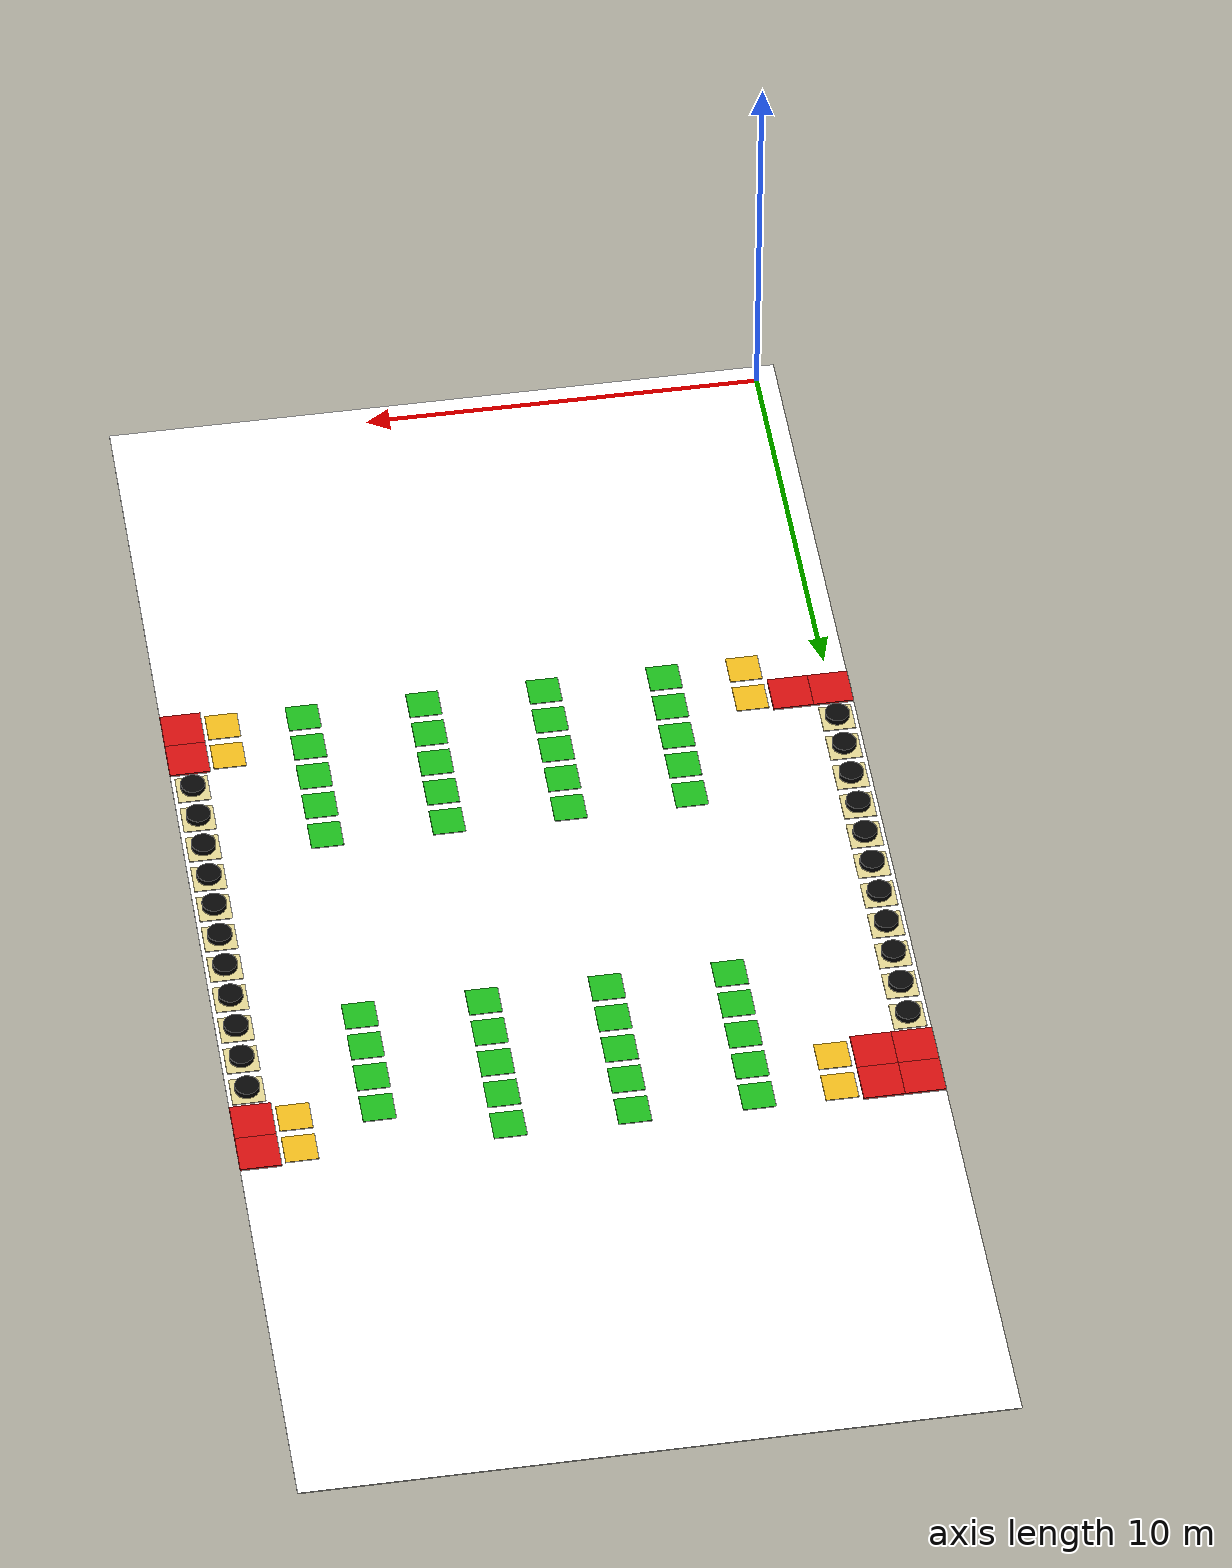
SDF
<sdf version="1.10">
 <world name="warehouse_grid">
  <model name="warehouse_floor">
   <static>true</static>
   <pose>8.0
        17.0
        0.0
        0 0 0</pose>
   <link name="floor_link">
    <visual name="floor_visual">
     <geometry><box><size>17.0
                35.0
                0.02</size></box></geometry>
     <material><ambient>0.95 0.95 0.95 1</ambient><diffuse>0.95 0.95 0.95 1</diffuse></material>
    </visual>
   </link>
  </model>
  <model name="blocked_0011">
   <static>true</static>
   <pose>0.0
        11.0
        0.045
        0 0 0</pose>
   <link name="link">
    <visual name="visual">
     <geometry><box><size>1.0
                1.0
                0.05</size></box></geometry>
     <material><ambient>0.8 0.05 0.05 1</ambient><diffuse>0.8 0.05 0.05 1</diffuse></material>
    </visual>
   </link>
  </model>
  <model name="blocked_0012">
   <static>true</static>
   <pose>0.0
        23.0
        0.045
        0 0 0</pose>
   <link name="link">
    <visual name="visual">
     <geometry><box><size>1.0
                1.0
                0.05</size></box></geometry>
     <material><ambient>0.8 0.05 0.05 1</ambient><diffuse>0.8 0.05 0.05 1</diffuse></material>
    </visual>
   </link>
  </model>
  <model name="blocked_0013">
   <static>true</static>
   <pose>0.0
        24.0
        0.045
        0 0 0</pose>
   <link name="link">
    <visual name="visual">
     <geometry><box><size>1.0
                1.0
                0.05</size></box></geometry>
     <material><ambient>0.8 0.05 0.05 1</ambient><diffuse>0.8 0.05 0.05 1</diffuse></material>
    </visual>
   </link>
  </model>
  <model name="blocked_0035">
   <static>true</static>
   <pose>1.0
        11.0
        0.045
        0 0 0</pose>
   <link name="link">
    <visual name="visual">
     <geometry><box><size>1.0
                1.0
                0.05</size></box></geometry>
     <material><ambient>0.8 0.05 0.05 1</ambient><diffuse>0.8 0.05 0.05 1</diffuse></material>
    </visual>
   </link>
  </model>
  <model name="blocked_0036">
   <static>true</static>
   <pose>1.0
        23.0
        0.045
        0 0 0</pose>
   <link name="link">
    <visual name="visual">
     <geometry><box><size>1.0
                1.0
                0.05</size></box></geometry>
     <material><ambient>0.8 0.05 0.05 1</ambient><diffuse>0.8 0.05 0.05 1</diffuse></material>
    </visual>
   </link>
  </model>
  <model name="blocked_0037">
   <static>true</static>
   <pose>1.0
        24.0
        0.045
        0 0 0</pose>
   <link name="link">
    <visual name="visual">
     <geometry><box><size>1.0
                1.0
                0.05</size></box></geometry>
     <material><ambient>0.8 0.05 0.05 1</ambient><diffuse>0.8 0.05 0.05 1</diffuse></material>
    </visual>
   </link>
  </model>
  <model name="blocked_0120">
   <static>true</static>
   <pose>16.0
        10.0
        0.045
        0 0 0</pose>
   <link name="link">
    <visual name="visual">
     <geometry><box><size>1.0
                1.0
                0.05</size></box></geometry>
     <material><ambient>0.8 0.05 0.05 1</ambient><diffuse>0.8 0.05 0.05 1</diffuse></material>
    </visual>
   </link>
  </model>
  <model name="blocked_0121">
   <static>true</static>
   <pose>16.0
        11.0
        0.045
        0 0 0</pose>
   <link name="link">
    <visual name="visual">
     <geometry><box><size>1.0
                1.0
                0.05</size></box></geometry>
     <material><ambient>0.8 0.05 0.05 1</ambient><diffuse>0.8 0.05 0.05 1</diffuse></material>
    </visual>
   </link>
  </model>
  <model name="blocked_0122">
   <static>true</static>
   <pose>16.0
        23.0
        0.045
        0 0 0</pose>
   <link name="link">
    <visual name="visual">
     <geometry><box><size>1.0
                1.0
                0.05</size></box></geometry>
     <material><ambient>0.8 0.05 0.05 1</ambient><diffuse>0.8 0.05 0.05 1</diffuse></material>
    </visual>
   </link>
  </model>
  <model name="blocked_0123">
   <static>true</static>
   <pose>16.0
        24.0
        0.045
        0 0 0</pose>
   <link name="link">
    <visual name="visual">
     <geometry><box><size>1.0
                1.0
                0.05</size></box></geometry>
     <material><ambient>0.8 0.05 0.05 1</ambient><diffuse>0.8 0.05 0.05 1</diffuse></material>
    </visual>
   </link>
  </model>
  <model name="dropoff_001">
   <static>true</static>
   <pose>2.0
        23.0
        0.02
        0 0 0</pose>
   <link name="link">
    <visual name="visual">
     <geometry><box><size>0.8
                0.8
                0.02</size></box></geometry>
     <material><ambient>0.90 0.70 0.10 1</ambient><diffuse>0.90 0.70 0.10 1</diffuse></material>
    </visual>
   </link>
  </model>
  <model name="dropoff_002">
   <static>true</static>
   <pose>2.0
        24.0
        0.02
        0 0 0</pose>
   <link name="link">
    <visual name="visual">
     <geometry><box><size>0.8
                0.8
                0.02</size></box></geometry>
     <material><ambient>0.90 0.70 0.10 1</ambient><diffuse>0.90 0.70 0.10 1</diffuse></material>
    </visual>
   </link>
  </model>
  <model name="dropoff_010">
   <static>true</static>
   <pose>15.0
        23.0
        0.02
        0 0 0</pose>
   <link name="link">
    <visual name="visual">
     <geometry><box><size>0.8
                0.8
                0.02</size></box></geometry>
     <material><ambient>0.90 0.70 0.10 1</ambient><diffuse>0.90 0.70 0.10 1</diffuse></material>
    </visual>
   </link>
  </model>
  <model name="dropoff_011">
   <static>true</static>
   <pose>15.0
        24.0
        0.02
        0 0 0</pose>
   <link name="link">
    <visual name="visual">
     <geometry><box><size>0.8
                0.8
                0.02</size></box></geometry>
     <material><ambient>0.90 0.70 0.10 1</ambient><diffuse>0.90 0.70 0.10 1</diffuse></material>
    </visual>
   </link>
  </model>
  <model name="shelf_001">
   <static>true</static>
   <pose>4.0
        20.0
        0.02
        0 0 0</pose>
   <link name="link">
    <visual name="visual">
     <geometry><box><size>0.8
                0.8
                0.02</size></box></geometry>
     <material><ambient>0.10 0.70 0.10 1</ambient><diffuse>0.10 0.70 0.10 1</diffuse></material>
    </visual>
   </link>
  </model>
  <model name="shelf_002">
   <static>true</static>
   <pose>4.0
        21.0
        0.02
        0 0 0</pose>
   <link name="link">
    <visual name="visual">
     <geometry><box><size>0.8
                0.8
                0.02</size></box></geometry>
     <material><ambient>0.10 0.70 0.10 1</ambient><diffuse>0.10 0.70 0.10 1</diffuse></material>
    </visual>
   </link>
  </model>
  <model name="shelf_003">
   <static>true</static>
   <pose>4.0
        22.0
        0.02
        0 0 0</pose>
   <link name="link">
    <visual name="visual">
     <geometry><box><size>0.8
                0.8
                0.02</size></box></geometry>
     <material><ambient>0.10 0.70 0.10 1</ambient><diffuse>0.10 0.70 0.10 1</diffuse></material>
    </visual>
   </link>
  </model>
  <model name="shelf_004">
   <static>true</static>
   <pose>4.0
        23.0
        0.02
        0 0 0</pose>
   <link name="link">
    <visual name="visual">
     <geometry><box><size>0.8
                0.8
                0.02</size></box></geometry>
     <material><ambient>0.10 0.70 0.10 1</ambient><diffuse>0.10 0.70 0.10 1</diffuse></material>
    </visual>
   </link>
  </model>
  <model name="shelf_005">
   <static>true</static>
   <pose>4.0
        24.0
        0.02
        0 0 0</pose>
   <link name="link">
    <visual name="visual">
     <geometry><box><size>0.8
                0.8
                0.02</size></box></geometry>
     <material><ambient>0.10 0.70 0.10 1</ambient><diffuse>0.10 0.70 0.10 1</diffuse></material>
    </visual>
   </link>
  </model>
  <model name="shelf_010">
   <static>true</static>
   <pose>7.0
        20.0
        0.02
        0 0 0</pose>
   <link name="link">
    <visual name="visual">
     <geometry><box><size>0.8
                0.8
                0.02</size></box></geometry>
     <material><ambient>0.10 0.70 0.10 1</ambient><diffuse>0.10 0.70 0.10 1</diffuse></material>
    </visual>
   </link>
  </model>
  <model name="shelf_011">
   <static>true</static>
   <pose>7.0
        21.0
        0.02
        0 0 0</pose>
   <link name="link">
    <visual name="visual">
     <geometry><box><size>0.8
                0.8
                0.02</size></box></geometry>
     <material><ambient>0.10 0.70 0.10 1</ambient><diffuse>0.10 0.70 0.10 1</diffuse></material>
    </visual>
   </link>
  </model>
  <model name="shelf_012">
   <static>true</static>
   <pose>7.0
        22.0
        0.02
        0 0 0</pose>
   <link name="link">
    <visual name="visual">
     <geometry><box><size>0.8
                0.8
                0.02</size></box></geometry>
     <material><ambient>0.10 0.70 0.10 1</ambient><diffuse>0.10 0.70 0.10 1</diffuse></material>
    </visual>
   </link>
  </model>
  <model name="shelf_013">
   <static>true</static>
   <pose>7.0
        23.0
        0.02
        0 0 0</pose>
   <link name="link">
    <visual name="visual">
     <geometry><box><size>0.8
                0.8
                0.02</size></box></geometry>
     <material><ambient>0.10 0.70 0.10 1</ambient><diffuse>0.10 0.70 0.10 1</diffuse></material>
    </visual>
   </link>
  </model>
  <model name="shelf_014">
   <static>true</static>
   <pose>7.0
        24.0
        0.02
        0 0 0</pose>
   <link name="link">
    <visual name="visual">
     <geometry><box><size>0.8
                0.8
                0.02</size></box></geometry>
     <material><ambient>0.10 0.70 0.10 1</ambient><diffuse>0.10 0.70 0.10 1</diffuse></material>
    </visual>
   </link>
  </model>
  <model name="shelf_019">
   <static>true</static>
   <pose>10.0
        20.0
        0.02
        0 0 0</pose>
   <link name="link">
    <visual name="visual">
     <geometry><box><size>0.8
                0.8
                0.02</size></box></geometry>
     <material><ambient>0.10 0.70 0.10 1</ambient><diffuse>0.10 0.70 0.10 1</diffuse></material>
    </visual>
   </link>
  </model>
  <model name="shelf_020">
   <static>true</static>
   <pose>10.0
        21.0
        0.02
        0 0 0</pose>
   <link name="link">
    <visual name="visual">
     <geometry><box><size>0.8
                0.8
                0.02</size></box></geometry>
     <material><ambient>0.10 0.70 0.10 1</ambient><diffuse>0.10 0.70 0.10 1</diffuse></material>
    </visual>
   </link>
  </model>
  <model name="shelf_021">
   <static>true</static>
   <pose>10.0
        22.0
        0.02
        0 0 0</pose>
   <link name="link">
    <visual name="visual">
     <geometry><box><size>0.8
                0.8
                0.02</size></box></geometry>
     <material><ambient>0.10 0.70 0.10 1</ambient><diffuse>0.10 0.70 0.10 1</diffuse></material>
    </visual>
   </link>
  </model>
  <model name="shelf_022">
   <static>true</static>
   <pose>10.0
        23.0
        0.02
        0 0 0</pose>
   <link name="link">
    <visual name="visual">
     <geometry><box><size>0.8
                0.8
                0.02</size></box></geometry>
     <material><ambient>0.10 0.70 0.10 1</ambient><diffuse>0.10 0.70 0.10 1</diffuse></material>
    </visual>
   </link>
  </model>
  <model name="shelf_023">
   <static>true</static>
   <pose>10.0
        24.0
        0.02
        0 0 0</pose>
   <link name="link">
    <visual name="visual">
     <geometry><box><size>0.8
                0.8
                0.02</size></box></geometry>
     <material><ambient>0.10 0.70 0.10 1</ambient><diffuse>0.10 0.70 0.10 1</diffuse></material>
    </visual>
   </link>
  </model>
  <model name="shelf_028">
   <static>true</static>
   <pose>13.0
        20.0
        0.02
        0 0 0</pose>
   <link name="link">
    <visual name="visual">
     <geometry><box><size>0.8
                0.8
                0.02</size></box></geometry>
     <material><ambient>0.10 0.70 0.10 1</ambient><diffuse>0.10 0.70 0.10 1</diffuse></material>
    </visual>
   </link>
  </model>
  <model name="shelf_029">
   <static>true</static>
   <pose>13.0
        21.0
        0.02
        0 0 0</pose>
   <link name="link">
    <visual name="visual">
     <geometry><box><size>0.8
                0.8
                0.02</size></box></geometry>
     <material><ambient>0.10 0.70 0.10 1</ambient><diffuse>0.10 0.70 0.10 1</diffuse></material>
    </visual>
   </link>
  </model>
  <model name="shelf_030">
   <static>true</static>
   <pose>13.0
        22.0
        0.02
        0 0 0</pose>
   <link name="link">
    <visual name="visual">
     <geometry><box><size>0.8
                0.8
                0.02</size></box></geometry>
     <material><ambient>0.10 0.70 0.10 1</ambient><diffuse>0.10 0.70 0.10 1</diffuse></material>
    </visual>
   </link>
  </model>
  <model name="shelf_031">
   <static>true</static>
   <pose>13.0
        23.0
        0.02
        0 0 0</pose>
   <link name="link">
    <visual name="visual">
     <geometry><box><size>0.8
                0.8
                0.02</size></box></geometry>
     <material><ambient>0.10 0.70 0.10 1</ambient><diffuse>0.10 0.70 0.10 1</diffuse></material>
    </visual>
   </link>
  </model>
  <model name="staging_001">
   <static>true</static>
   <pose>0.0
        12.0
        0.02
        0 0 0</pose>
   <link name="link">
    <visual name="visual">
     <geometry><box><size>0.8
                0.8
                0.02</size></box></geometry>
     <material><ambient>0.85 0.80 0.55 1</ambient><diffuse>0.85 0.80 0.55 1</diffuse></material>
    </visual>
   </link>
  </model>
  <model name="staging_002">
   <static>true</static>
   <pose>0.0
        13.0
        0.02
        0 0 0</pose>
   <link name="link">
    <visual name="visual">
     <geometry><box><size>0.8
                0.8
                0.02</size></box></geometry>
     <material><ambient>0.85 0.80 0.55 1</ambient><diffuse>0.85 0.80 0.55 1</diffuse></material>
    </visual>
   </link>
  </model>
  <model name="staging_003">
   <static>true</static>
   <pose>0.0
        14.0
        0.02
        0 0 0</pose>
   <link name="link">
    <visual name="visual">
     <geometry><box><size>0.8
                0.8
                0.02</size></box></geometry>
     <material><ambient>0.85 0.80 0.55 1</ambient><diffuse>0.85 0.80 0.55 1</diffuse></material>
    </visual>
   </link>
  </model>
  <model name="staging_004">
   <static>true</static>
   <pose>0.0
        15.0
        0.02
        0 0 0</pose>
   <link name="link">
    <visual name="visual">
     <geometry><box><size>0.8
                0.8
                0.02</size></box></geometry>
     <material><ambient>0.85 0.80 0.55 1</ambient><diffuse>0.85 0.80 0.55 1</diffuse></material>
    </visual>
   </link>
  </model>
  <model name="staging_005">
   <static>true</static>
   <pose>0.0
        16.0
        0.02
        0 0 0</pose>
   <link name="link">
    <visual name="visual">
     <geometry><box><size>0.8
                0.8
                0.02</size></box></geometry>
     <material><ambient>0.85 0.80 0.55 1</ambient><diffuse>0.85 0.80 0.55 1</diffuse></material>
    </visual>
   </link>
  </model>
  <model name="staging_006">
   <static>true</static>
   <pose>0.0
        17.0
        0.02
        0 0 0</pose>
   <link name="link">
    <visual name="visual">
     <geometry><box><size>0.8
                0.8
                0.02</size></box></geometry>
     <material><ambient>0.85 0.80 0.55 1</ambient><diffuse>0.85 0.80 0.55 1</diffuse></material>
    </visual>
   </link>
  </model>
  <model name="staging_007">
   <static>true</static>
   <pose>0.0
        18.0
        0.02
        0 0 0</pose>
   <link name="link">
    <visual name="visual">
     <geometry><box><size>0.8
                0.8
                0.02</size></box></geometry>
     <material><ambient>0.85 0.80 0.55 1</ambient><diffuse>0.85 0.80 0.55 1</diffuse></material>
    </visual>
   </link>
  </model>
  <model name="staging_008">
   <static>true</static>
   <pose>0.0
        19.0
        0.02
        0 0 0</pose>
   <link name="link">
    <visual name="visual">
     <geometry><box><size>0.8
                0.8
                0.02</size></box></geometry>
     <material><ambient>0.85 0.80 0.55 1</ambient><diffuse>0.85 0.80 0.55 1</diffuse></material>
    </visual>
   </link>
  </model>
  <model name="staging_009">
   <static>true</static>
   <pose>0.0
        20.0
        0.02
        0 0 0</pose>
   <link name="link">
    <visual name="visual">
     <geometry><box><size>0.8
                0.8
                0.02</size></box></geometry>
     <material><ambient>0.85 0.80 0.55 1</ambient><diffuse>0.85 0.80 0.55 1</diffuse></material>
    </visual>
   </link>
  </model>
  <model name="staging_010">
   <static>true</static>
   <pose>0.0
        21.0
        0.02
        0 0 0</pose>
   <link name="link">
    <visual name="visual">
     <geometry><box><size>0.8
                0.8
                0.02</size></box></geometry>
     <material><ambient>0.85 0.80 0.55 1</ambient><diffuse>0.85 0.80 0.55 1</diffuse></material>
    </visual>
   </link>
  </model>
  <model name="staging_011">
   <static>true</static>
   <pose>0.0
        22.0
        0.02
        0 0 0</pose>
   <link name="link">
    <visual name="visual">
     <geometry><box><size>0.8
                0.8
                0.02</size></box></geometry>
     <material><ambient>0.85 0.80 0.55 1</ambient><diffuse>0.85 0.80 0.55 1</diffuse></material>
    </visual>
   </link>
  </model>
  <model name="staging_012">
   <static>true</static>
   <pose>16.0
        12.0
        0.02
        0 0 0</pose>
   <link name="link">
    <visual name="visual">
     <geometry><box><size>0.8
                0.8
                0.02</size></box></geometry>
     <material><ambient>0.85 0.80 0.55 1</ambient><diffuse>0.85 0.80 0.55 1</diffuse></material>
    </visual>
   </link>
  </model>
  <model name="staging_013">
   <static>true</static>
   <pose>16.0
        13.0
        0.02
        0 0 0</pose>
   <link name="link">
    <visual name="visual">
     <geometry><box><size>0.8
                0.8
                0.02</size></box></geometry>
     <material><ambient>0.85 0.80 0.55 1</ambient><diffuse>0.85 0.80 0.55 1</diffuse></material>
    </visual>
   </link>
  </model>
  <model name="staging_014">
   <static>true</static>
   <pose>16.0
        14.0
        0.02
        0 0 0</pose>
   <link name="link">
    <visual name="visual">
     <geometry><box><size>0.8
                0.8
                0.02</size></box></geometry>
     <material><ambient>0.85 0.80 0.55 1</ambient><diffuse>0.85 0.80 0.55 1</diffuse></material>
    </visual>
   </link>
  </model>
  <model name="staging_015">
   <static>true</static>
   <pose>16.0
        15.0
        0.02
        0 0 0</pose>
   <link name="link">
    <visual name="visual">
     <geometry><box><size>0.8
                0.8
                0.02</size></box></geometry>
     <material><ambient>0.85 0.80 0.55 1</ambient><diffuse>0.85 0.80 0.55 1</diffuse></material>
    </visual>
   </link>
  </model>
  <model name="staging_016">
   <static>true</static>
   <pose>16.0
        16.0
        0.02
        0 0 0</pose>
   <link name="link">
    <visual name="visual">
     <geometry><box><size>0.8
                0.8
                0.02</size></box></geometry>
     <material><ambient>0.85 0.80 0.55 1</ambient><diffuse>0.85 0.80 0.55 1</diffuse></material>
    </visual>
   </link>
  </model>
  <model name="staging_017">
   <static>true</static>
   <pose>16.0
        17.0
        0.02
        0 0 0</pose>
   <link name="link">
    <visual name="visual">
     <geometry><box><size>0.8
                0.8
                0.02</size></box></geometry>
     <material><ambient>0.85 0.80 0.55 1</ambient><diffuse>0.85 0.80 0.55 1</diffuse></material>
    </visual>
   </link>
  </model>
  <model name="staging_018">
   <static>true</static>
   <pose>16.0
        18.0
        0.02
        0 0 0</pose>
   <link name="link">
    <visual name="visual">
     <geometry><box><size>0.8
                0.8
                0.02</size></box></geometry>
     <material><ambient>0.85 0.80 0.55 1</ambient><diffuse>0.85 0.80 0.55 1</diffuse></material>
    </visual>
   </link>
  </model>
  <model name="staging_019">
   <static>true</static>
   <pose>16.0
        19.0
        0.02
        0 0 0</pose>
   <link name="link">
    <visual name="visual">
     <geometry><box><size>0.8
                0.8
                0.02</size></box></geometry>
     <material><ambient>0.85 0.80 0.55 1</ambient><diffuse>0.85 0.80 0.55 1</diffuse></material>
    </visual>
   </link>
  </model>
  <model name="staging_020">
   <static>true</static>
   <pose>16.0
        20.0
        0.02
        0 0 0</pose>
   <link name="link">
    <visual name="visual">
     <geometry><box><size>0.8
                0.8
                0.02</size></box></geometry>
     <material><ambient>0.85 0.80 0.55 1</ambient><diffuse>0.85 0.80 0.55 1</diffuse></material>
    </visual>
   </link>
  </model>
  <model name="staging_021">
   <static>true</static>
   <pose>16.0
        21.0
        0.02
        0 0 0</pose>
   <link name="link">
    <visual name="visual">
     <geometry><box><size>0.8
                0.8
                0.02</size></box></geometry>
     <material><ambient>0.85 0.80 0.55 1</ambient><diffuse>0.85 0.80 0.55 1</diffuse></material>
    </visual>
   </link>
  </model>
  <model name="staging_022">
   <static>true</static>
   <pose>16.0
        22.0
        0.02
        0 0 0</pose>
   <link name="link">
    <visual name="visual">
     <geometry><box><size>0.8
                0.8
                0.02</size></box></geometry>
     <material><ambient>0.85 0.80 0.55 1</ambient><diffuse>0.85 0.80 0.55 1</diffuse></material>
    </visual>
   </link>
  </model>
  <model name="shelf_041">
   <static>true</static>
   <pose>4.0
        10.0
        0.02
        0 0 0</pose>
   <link name="link">
    <visual name="visual">
     <geometry><box><size>0.8
                0.8
                0.02</size></box></geometry>
     <material><ambient>0.10 0.70 0.10 1</ambient><diffuse>0.10 0.70 0.10 1</diffuse></material>
    </visual>
   </link>
  </model>
  <model name="shelf_042">
   <static>true</static>
   <pose>4.0
        11.0
        0.02
        0 0 0</pose>
   <link name="link">
    <visual name="visual">
     <geometry><box><size>0.8
                0.8
                0.02</size></box></geometry>
     <material><ambient>0.10 0.70 0.10 1</ambient><diffuse>0.10 0.70 0.10 1</diffuse></material>
    </visual>
   </link>
  </model>
  <model name="shelf_043">
   <static>true</static>
   <pose>4.0
        12.0
        0.02
        0 0 0</pose>
   <link name="link">
    <visual name="visual">
     <geometry><box><size>0.8
                0.8
                0.02</size></box></geometry>
     <material><ambient>0.10 0.70 0.10 1</ambient><diffuse>0.10 0.70 0.10 1</diffuse></material>
    </visual>
   </link>
  </model>
  <model name="shelf_044">
   <static>true</static>
   <pose>4.0
        13.0
        0.02
        0 0 0</pose>
   <link name="link">
    <visual name="visual">
     <geometry><box><size>0.8
                0.8
                0.02</size></box></geometry>
     <material><ambient>0.10 0.70 0.10 1</ambient><diffuse>0.10 0.70 0.10 1</diffuse></material>
    </visual>
   </link>
  </model>
  <model name="shelf_045">
   <static>true</static>
   <pose>4.0
        14.0
        0.02
        0 0 0</pose>
   <link name="link">
    <visual name="visual">
     <geometry><box><size>0.8
                0.8
                0.02</size></box></geometry>
     <material><ambient>0.10 0.70 0.10 1</ambient><diffuse>0.10 0.70 0.10 1</diffuse></material>
    </visual>
   </link>
  </model>
  <model name="shelf_050">
   <static>true</static>
   <pose>7.0
        10.0
        0.02
        0 0 0</pose>
   <link name="link">
    <visual name="visual">
     <geometry><box><size>0.8
                0.8
                0.02</size></box></geometry>
     <material><ambient>0.10 0.70 0.10 1</ambient><diffuse>0.10 0.70 0.10 1</diffuse></material>
    </visual>
   </link>
  </model>
  <model name="shelf_051">
   <static>true</static>
   <pose>7.0
        11.0
        0.02
        0 0 0</pose>
   <link name="link">
    <visual name="visual">
     <geometry><box><size>0.8
                0.8
                0.02</size></box></geometry>
     <material><ambient>0.10 0.70 0.10 1</ambient><diffuse>0.10 0.70 0.10 1</diffuse></material>
    </visual>
   </link>
  </model>
  <model name="shelf_052">
   <static>true</static>
   <pose>7.0
        12.0
        0.02
        0 0 0</pose>
   <link name="link">
    <visual name="visual">
     <geometry><box><size>0.8
                0.8
                0.02</size></box></geometry>
     <material><ambient>0.10 0.70 0.10 1</ambient><diffuse>0.10 0.70 0.10 1</diffuse></material>
    </visual>
   </link>
  </model>
  <model name="shelf_053">
   <static>true</static>
   <pose>7.0
        13.0
        0.02
        0 0 0</pose>
   <link name="link">
    <visual name="visual">
     <geometry><box><size>0.8
                0.8
                0.02</size></box></geometry>
     <material><ambient>0.10 0.70 0.10 1</ambient><diffuse>0.10 0.70 0.10 1</diffuse></material>
    </visual>
   </link>
  </model>
  <model name="shelf_054">
   <static>true</static>
   <pose>7.0
        14.0
        0.02
        0 0 0</pose>
   <link name="link">
    <visual name="visual">
     <geometry><box><size>0.8
                0.8
                0.02</size></box></geometry>
     <material><ambient>0.10 0.70 0.10 1</ambient><diffuse>0.10 0.70 0.10 1</diffuse></material>
    </visual>
   </link>
  </model>
  <model name="shelf_059">
   <static>true</static>
   <pose>10.0
        10.0
        0.02
        0 0 0</pose>
   <link name="link">
    <visual name="visual">
     <geometry><box><size>0.8
                0.8
                0.02</size></box></geometry>
     <material><ambient>0.10 0.70 0.10 1</ambient><diffuse>0.10 0.70 0.10 1</diffuse></material>
    </visual>
   </link>
  </model>
  <model name="shelf_060">
   <static>true</static>
   <pose>10.0
        11.0
        0.02
        0 0 0</pose>
   <link name="link">
    <visual name="visual">
     <geometry><box><size>0.8
                0.8
                0.02</size></box></geometry>
     <material><ambient>0.10 0.70 0.10 1</ambient><diffuse>0.10 0.70 0.10 1</diffuse></material>
    </visual>
   </link>
  </model>
  <model name="shelf_061">
   <static>true</static>
   <pose>10.0
        12.0
        0.02
        0 0 0</pose>
   <link name="link">
    <visual name="visual">
     <geometry><box><size>0.8
                0.8
                0.02</size></box></geometry>
     <material><ambient>0.10 0.70 0.10 1</ambient><diffuse>0.10 0.70 0.10 1</diffuse></material>
    </visual>
   </link>
  </model>
  <model name="shelf_062">
   <static>true</static>
   <pose>10.0
        13.0
        0.02
        0 0 0</pose>
   <link name="link">
    <visual name="visual">
     <geometry><box><size>0.8
                0.8
                0.02</size></box></geometry>
     <material><ambient>0.10 0.70 0.10 1</ambient><diffuse>0.10 0.70 0.10 1</diffuse></material>
    </visual>
   </link>
  </model>
  <model name="shelf_063">
   <static>true</static>
   <pose>10.0
        14.0
        0.02
        0 0 0</pose>
   <link name="link">
    <visual name="visual">
     <geometry><box><size>0.8
                0.8
                0.02</size></box></geometry>
     <material><ambient>0.10 0.70 0.10 1</ambient><diffuse>0.10 0.70 0.10 1</diffuse></material>
    </visual>
   </link>
  </model>
  <model name="shelf_068">
   <static>true</static>
   <pose>13.0
        10.0
        0.02
        0 0 0</pose>
   <link name="link">
    <visual name="visual">
     <geometry><box><size>0.8
                0.8
                0.02</size></box></geometry>
     <material><ambient>0.10 0.70 0.10 1</ambient><diffuse>0.10 0.70 0.10 1</diffuse></material>
    </visual>
   </link>
  </model>
  <model name="shelf_069">
   <static>true</static>
   <pose>13.0
        11.0
        0.02
        0 0 0</pose>
   <link name="link">
    <visual name="visual">
     <geometry><box><size>0.8
                0.8
                0.02</size></box></geometry>
     <material><ambient>0.10 0.70 0.10 1</ambient><diffuse>0.10 0.70 0.10 1</diffuse></material>
    </visual>
   </link>
  </model>
  <model name="shelf_070">
   <static>true</static>
   <pose>13.0
        12.0
        0.02
        0 0 0</pose>
   <link name="link">
    <visual name="visual">
     <geometry><box><size>0.8
                0.8
                0.02</size></box></geometry>
     <material><ambient>0.10 0.70 0.10 1</ambient><diffuse>0.10 0.70 0.10 1</diffuse></material>
    </visual>
   </link>
  </model>
  <model name="shelf_071">
   <static>true</static>
   <pose>13.0
        13.0
        0.02
        0 0 0</pose>
   <link name="link">
    <visual name="visual">
     <geometry><box><size>0.8
                0.8
                0.02</size></box></geometry>
     <material><ambient>0.10 0.70 0.10 1</ambient><diffuse>0.10 0.70 0.10 1</diffuse></material>
    </visual>
   </link>
  </model>
  <model name="shelf_072">
   <static>true</static>
   <pose>13.0
        14.0
        0.02
        0 0 0</pose>
   <link name="link">
    <visual name="visual">
     <geometry><box><size>0.8
                0.8
                0.02</size></box></geometry>
     <material><ambient>0.10 0.70 0.10 1</ambient><diffuse>0.10 0.70 0.10 1</diffuse></material>
    </visual>
   </link>
  </model>
  <model name="dropoff_026">
   <static>true</static>
   <pose>2.0
        10.0
        0.02
        0 0 0</pose>
   <link name="link">
    <visual name="visual">
     <geometry><box><size>0.8
                0.8
                0.02</size></box></geometry>
     <material><ambient>0.90 0.70 0.10 1</ambient><diffuse>0.90 0.70 0.10 1</diffuse></material>
    </visual>
   </link>
  </model>
  <model name="dropoff_027">
   <static>true</static>
   <pose>2.0
        11.0
        0.02
        0 0 0</pose>
   <link name="link">
    <visual name="visual">
     <geometry><box><size>0.8
                0.8
                0.02</size></box></geometry>
     <material><ambient>0.90 0.70 0.10 1</ambient><diffuse>0.90 0.70 0.10 1</diffuse></material>
    </visual>
   </link>
  </model>
  <model name="dropoff_035">
   <static>true</static>
   <pose>15.0
        10.0
        0.02
        0 0 0</pose>
   <link name="link">
    <visual name="visual">
     <geometry><box><size>0.8
                0.8
                0.02</size></box></geometry>
     <material><ambient>0.90 0.70 0.10 1</ambient><diffuse>0.90 0.70 0.10 1</diffuse></material>
    </visual>
   </link>
  </model>
  <model name="dropoff_036">
   <static>true</static>
   <pose>15.0
        11.0
        0.02
        0 0 0</pose>
   <link name="link">
    <visual name="visual">
     <geometry><box><size>0.8
                0.8
                0.02</size></box></geometry>
     <material><ambient>0.90 0.70 0.10 1</ambient><diffuse>0.90 0.70 0.10 1</diffuse></material>
    </visual>
   </link>
  </model>
  <model name="robot_001">
   <static>true</static>
   <pose>0.0
        12.0
        0.155
        0 0 0</pose>
   <link name="robot_link">
    <visual name="robot_visual">
     <geometry><cylinder><radius>0.3</radius><length>0.15</length></cylinder></geometry>
     <material><ambient>0.02 0.02 0.02 1</ambient><diffuse>0.02 0.02 0.02 1</diffuse></material>
    </visual>
   </link>
  </model>
  <model name="robot_002">
   <static>true</static>
   <pose>0.0
        13.0
        0.155
        0 0 0</pose>
   <link name="robot_link">
    <visual name="robot_visual">
     <geometry><cylinder><radius>0.3</radius><length>0.15</length></cylinder></geometry>
     <material><ambient>0.02 0.02 0.02 1</ambient><diffuse>0.02 0.02 0.02 1</diffuse></material>
    </visual>
   </link>
  </model>
  <model name="robot_003">
   <static>true</static>
   <pose>0.0
        14.0
        0.155
        0 0 0</pose>
   <link name="robot_link">
    <visual name="robot_visual">
     <geometry><cylinder><radius>0.3</radius><length>0.15</length></cylinder></geometry>
     <material><ambient>0.02 0.02 0.02 1</ambient><diffuse>0.02 0.02 0.02 1</diffuse></material>
    </visual>
   </link>
  </model>
  <model name="robot_004">
   <static>true</static>
   <pose>0.0
        15.0
        0.155
        0 0 0</pose>
   <link name="robot_link">
    <visual name="robot_visual">
     <geometry><cylinder><radius>0.3</radius><length>0.15</length></cylinder></geometry>
     <material><ambient>0.02 0.02 0.02 1</ambient><diffuse>0.02 0.02 0.02 1</diffuse></material>
    </visual>
   </link>
  </model>
  <model name="robot_005">
   <static>true</static>
   <pose>0.0
        16.0
        0.155
        0 0 0</pose>
   <link name="robot_link">
    <visual name="robot_visual">
     <geometry><cylinder><radius>0.3</radius><length>0.15</length></cylinder></geometry>
     <material><ambient>0.02 0.02 0.02 1</ambient><diffuse>0.02 0.02 0.02 1</diffuse></material>
    </visual>
   </link>
  </model>
  <model name="robot_006">
   <static>true</static>
   <pose>0.0
        17.0
        0.155
        0 0 0</pose>
   <link name="robot_link">
    <visual name="robot_visual">
     <geometry><cylinder><radius>0.3</radius><length>0.15</length></cylinder></geometry>
     <material><ambient>0.02 0.02 0.02 1</ambient><diffuse>0.02 0.02 0.02 1</diffuse></material>
    </visual>
   </link>
  </model>
  <model name="robot_007">
   <static>true</static>
   <pose>0.0
        18.0
        0.155
        0 0 0</pose>
   <link name="robot_link">
    <visual name="robot_visual">
     <geometry><cylinder><radius>0.3</radius><length>0.15</length></cylinder></geometry>
     <material><ambient>0.02 0.02 0.02 1</ambient><diffuse>0.02 0.02 0.02 1</diffuse></material>
    </visual>
   </link>
  </model>
  <model name="robot_008">
   <static>true</static>
   <pose>0.0
        19.0
        0.155
        0 0 0</pose>
   <link name="robot_link">
    <visual name="robot_visual">
     <geometry><cylinder><radius>0.3</radius><length>0.15</length></cylinder></geometry>
     <material><ambient>0.02 0.02 0.02 1</ambient><diffuse>0.02 0.02 0.02 1</diffuse></material>
    </visual>
   </link>
  </model>
  <model name="robot_009">
   <static>true</static>
   <pose>0.0
        20.0
        0.155
        0 0 0</pose>
   <link name="robot_link">
    <visual name="robot_visual">
     <geometry><cylinder><radius>0.3</radius><length>0.15</length></cylinder></geometry>
     <material><ambient>0.02 0.02 0.02 1</ambient><diffuse>0.02 0.02 0.02 1</diffuse></material>
    </visual>
   </link>
  </model>
  <model name="robot_010">
   <static>true</static>
   <pose>0.0
        21.0
        0.155
        0 0 0</pose>
   <link name="robot_link">
    <visual name="robot_visual">
     <geometry><cylinder><radius>0.3</radius><length>0.15</length></cylinder></geometry>
     <material><ambient>0.02 0.02 0.02 1</ambient><diffuse>0.02 0.02 0.02 1</diffuse></material>
    </visual>
   </link>
  </model>
  <model name="robot_011">
   <static>true</static>
   <pose>0.0
        22.0
        0.155
        0 0 0</pose>
   <link name="robot_link">
    <visual name="robot_visual">
     <geometry><cylinder><radius>0.3</radius><length>0.15</length></cylinder></geometry>
     <material><ambient>0.02 0.02 0.02 1</ambient><diffuse>0.02 0.02 0.02 1</diffuse></material>
    </visual>
   </link>
  </model>
  <model name="robot_012">
   <static>true</static>
   <pose>16.0
        12.0
        0.155
        0 0 0</pose>
   <link name="robot_link">
    <visual name="robot_visual">
     <geometry><cylinder><radius>0.3</radius><length>0.15</length></cylinder></geometry>
     <material><ambient>0.02 0.02 0.02 1</ambient><diffuse>0.02 0.02 0.02 1</diffuse></material>
    </visual>
   </link>
  </model>
  <model name="robot_013">
   <static>true</static>
   <pose>16.0
        13.0
        0.155
        0 0 0</pose>
   <link name="robot_link">
    <visual name="robot_visual">
     <geometry><cylinder><radius>0.3</radius><length>0.15</length></cylinder></geometry>
     <material><ambient>0.02 0.02 0.02 1</ambient><diffuse>0.02 0.02 0.02 1</diffuse></material>
    </visual>
   </link>
  </model>
  <model name="robot_014">
   <static>true</static>
   <pose>16.0
        14.0
        0.155
        0 0 0</pose>
   <link name="robot_link">
    <visual name="robot_visual">
     <geometry><cylinder><radius>0.3</radius><length>0.15</length></cylinder></geometry>
     <material><ambient>0.02 0.02 0.02 1</ambient><diffuse>0.02 0.02 0.02 1</diffuse></material>
    </visual>
   </link>
  </model>
  <model name="robot_015">
   <static>true</static>
   <pose>16.0
        15.0
        0.155
        0 0 0</pose>
   <link name="robot_link">
    <visual name="robot_visual">
     <geometry><cylinder><radius>0.3</radius><length>0.15</length></cylinder></geometry>
     <material><ambient>0.02 0.02 0.02 1</ambient><diffuse>0.02 0.02 0.02 1</diffuse></material>
    </visual>
   </link>
  </model>
  <model name="robot_016">
   <static>true</static>
   <pose>16.0
        16.0
        0.155
        0 0 0</pose>
   <link name="robot_link">
    <visual name="robot_visual">
     <geometry><cylinder><radius>0.3</radius><length>0.15</length></cylinder></geometry>
     <material><ambient>0.02 0.02 0.02 1</ambient><diffuse>0.02 0.02 0.02 1</diffuse></material>
    </visual>
   </link>
  </model>
  <model name="robot_017">
   <static>true</static>
   <pose>16.0
        17.0
        0.155
        0 0 0</pose>
   <link name="robot_link">
    <visual name="robot_visual">
     <geometry><cylinder><radius>0.3</radius><length>0.15</length></cylinder></geometry>
     <material><ambient>0.02 0.02 0.02 1</ambient><diffuse>0.02 0.02 0.02 1</diffuse></material>
    </visual>
   </link>
  </model>
  <model name="robot_018">
   <static>true</static>
   <pose>16.0
        18.0
        0.155
        0 0 0</pose>
   <link name="robot_link">
    <visual name="robot_visual">
     <geometry><cylinder><radius>0.3</radius><length>0.15</length></cylinder></geometry>
     <material><ambient>0.02 0.02 0.02 1</ambient><diffuse>0.02 0.02 0.02 1</diffuse></material>
    </visual>
   </link>
  </model>
  <model name="robot_019">
   <static>true</static>
   <pose>16.0
        19.0
        0.155
        0 0 0</pose>
   <link name="robot_link">
    <visual name="robot_visual">
     <geometry><cylinder><radius>0.3</radius><length>0.15</length></cylinder></geometry>
     <material><ambient>0.02 0.02 0.02 1</ambient><diffuse>0.02 0.02 0.02 1</diffuse></material>
    </visual>
   </link>
  </model>
  <model name="robot_020">
   <static>true</static>
   <pose>16.0
        20.0
        0.155
        0 0 0</pose>
   <link name="robot_link">
    <visual name="robot_visual">
     <geometry><cylinder><radius>0.3</radius><length>0.15</length></cylinder></geometry>
     <material><ambient>0.02 0.02 0.02 1</ambient><diffuse>0.02 0.02 0.02 1</diffuse></material>
    </visual>
   </link>
  </model>
  <model name="robot_021">
   <static>true</static>
   <pose>16.0
        21.0
        0.155
        0 0 0</pose>
   <link name="robot_link">
    <visual name="robot_visual">
     <geometry><cylinder><radius>0.3</radius><length>0.15</length></cylinder></geometry>
     <material><ambient>0.02 0.02 0.02 1</ambient><diffuse>0.02 0.02 0.02 1</diffuse></material>
    </visual>
   </link>
  </model>
  <model name="robot_022">
   <static>true</static>
   <pose>16.0
        22.0
        0.155
        0 0 0</pose>
   <link name="robot_link">
    <visual name="robot_visual">
     <geometry><cylinder><radius>0.3</radius><length>0.15</length></cylinder></geometry>
     <material><ambient>0.02 0.02 0.02 1</ambient><diffuse>0.02 0.02 0.02 1</diffuse></material>
    </visual>
   </link>
  </model>
 </world>
</sdf>
